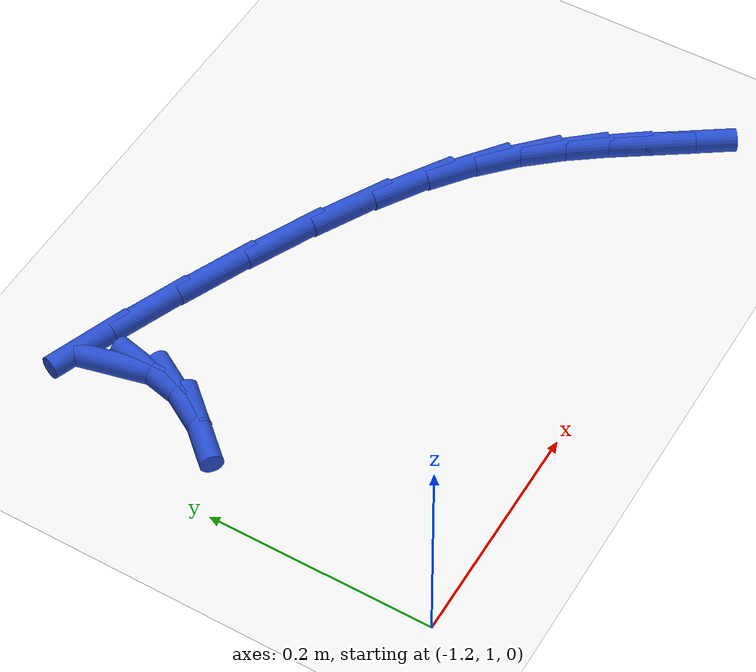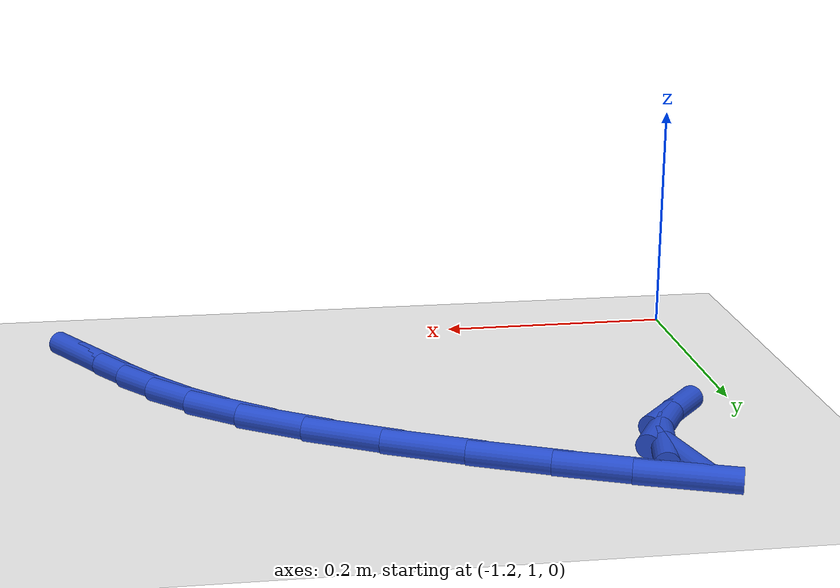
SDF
<sdf version="1.6">
 <world name="default">
  <model name="ground_plane">
   <static>1</static>
   <link name="link">
    <collision name="collision">
     <geometry><plane><normal>0 0 1</normal><size>100 100</size></plane></geometry>
     <surface><friction><ode><mu>100</mu><mu2>50</mu2></ode></friction></surface>
    </collision>
    <visual name="visual">
     <cast_shadows>0</cast_shadows>
     <geometry><plane><normal>0 0 1</normal><size>100 100</size></plane></geometry>
     <material>
      <script><uri>file://media/materials/scripts/gazebo.material</uri><name>Gazebo/WhiteGlow</name></script>
     </material>
    </visual>
   </link>
  </model>
  <model name="line">
   <link name="link_31">
    <pose>-0.6655586864197363 1.0494621732485867 0.01 0 1.57 -0.9759534143175839</pose>
    <collision name="collision">
     <geometry><cylinder><radius>0.01</radius><length>0.08</length></cylinder></geometry>
    </collision>
    <visual name="visual">
     <material>
      <script><name>Gazebo/Blue</name><uri>file://media/materials/scripts/gazebo.material</uri></script>
     </material>
     <geometry><cylinder><radius>0.01</radius><length>0.08</length></cylinder></geometry>
    </visual>
   </link>
   <link name="link_32">
    <pose>-0.6857666283754984 1.079329399103206 0.01 0 1.57 -0.9794229629001187</pose>
    <collision name="collision">
     <geometry><cylinder><radius>0.01</radius><length>0.08</length></cylinder></geometry>
    </collision>
    <visual name="visual">
     <material>
      <script><name>Gazebo/Blue</name><uri>file://media/materials/scripts/gazebo.material</uri></script>
     </material>
     <geometry><cylinder><radius>0.01</radius><length>0.08</length></cylinder></geometry>
    </visual>
   </link>
   <link name="link_33">
    <pose>-0.7060082931679487 1.1094712641499915 0.01 0 1.57 -0.9382048390278432</pose>
    <collision name="collision">
     <geometry><cylinder><radius>0.01</radius><length>0.08</length></cylinder></geometry>
    </collision>
    <visual name="visual">
     <material>
      <script><name>Gazebo/Blue</name><uri>file://media/materials/scripts/gazebo.material</uri></script>
     </material>
     <geometry><cylinder><radius>0.01</radius><length>0.08</length></cylinder></geometry>
    </visual>
   </link>
   <link name="link_34">
    <pose>-0.728303916838107 1.139884421072512 0.01 0 1.57 -0.8608238318364018</pose>
    <collision name="collision">
     <geometry><cylinder><radius>0.01</radius><length>0.08</length></cylinder></geometry>
    </collision>
    <visual name="visual">
     <material>
      <script><name>Gazebo/Blue</name><uri>file://media/materials/scripts/gazebo.material</uri></script>
     </material>
     <geometry><cylinder><radius>0.01</radius><length>0.08</length></cylinder></geometry>
    </visual>
   </link>
   <link name="link_35">
    <pose>-0.7546737357314608 1.1705655225461382 0.01 0 1.57 -0.7614545776031008</pose>
    <collision name="collision">
     <geometry><cylinder><radius>0.01</radius><length>0.08</length></cylinder></geometry>
    </collision>
    <visual name="visual">
     <material>
      <script><name>Gazebo/Blue</name><uri>file://media/materials/scripts/gazebo.material</uri></script>
     </material>
     <geometry><cylinder><radius>0.01</radius><length>0.08</length></cylinder></geometry>
    </visual>
   </link>
   <link name="link_36">
    <pose>-0.787137986193498 1.2015112212462418 0.01 0 1.57 -0.6555778886582705</pose>
    <collision name="collision">
     <geometry><cylinder><radius>0.01</radius><length>0.08</length></cylinder></geometry>
    </collision>
    <visual name="visual">
     <material>
      <script><name>Gazebo/Blue</name><uri>file://media/materials/scripts/gazebo.material</uri></script>
     </material>
     <geometry><cylinder><radius>0.01</radius><length>0.08</length></cylinder></geometry>
    </visual>
   </link>
   <link name="link_37">
    <pose>-0.8277169045697061 1.2327181698481937 0.01 0 1.57 -0.5586795351515282</pose>
    <collision name="collision">
     <geometry><cylinder><radius>0.01</radius><length>0.08</length></cylinder></geometry>
    </collision>
    <visual name="visual">
     <material>
      <script><name>Gazebo/Blue</name><uri>file://media/materials/scripts/gazebo.material</uri></script>
     </material>
     <geometry><cylinder><radius>0.01</radius><length>0.08</length></cylinder></geometry>
    </visual>
   </link>
   <link name="link_38">
    <pose>-0.877895201160869 1.2640852031718677 0.01 0 1.57 -0.49127846712354617</pose>
    <collision name="collision">
     <geometry><cylinder><radius>0.01</radius><length>0.08</length></cylinder></geometry>
    </collision>
    <visual name="visual">
     <material>
      <script><name>Gazebo/Blue</name><uri>file://media/materials/scripts/gazebo.material</uri></script>
     </material>
     <geometry><cylinder><radius>0.01</radius><length>0.08</length></cylinder></geometry>
    </visual>
   </link>
   <link name="link_39">
    <pose>-0.9353225960276756 1.2948106662573213 0.01 0 1.57 -0.4456797730149744</pose>
    <collision name="collision">
     <geometry><cylinder><radius>0.01</radius><length>0.08</length></cylinder></geometry>
    </collision>
    <visual name="visual">
     <material>
      <script><name>Gazebo/Blue</name><uri>file://media/materials/scripts/gazebo.material</uri></script>
     </material>
     <geometry><cylinder><radius>0.01</radius><length>0.08</length></cylinder></geometry>
    </visual>
   </link>
   <link name="link_40">
    <pose>-0.9959768888260876 1.3237875153214698 0.01 0 1.57 -0.4114936196845546</pose>
    <collision name="collision">
     <geometry><cylinder><radius>0.01</radius><length>0.08</length></cylinder></geometry>
    </collision>
    <visual name="visual">
     <material>
      <script><name>Gazebo/Blue</name><uri>file://media/materials/scripts/gazebo.material</uri></script>
     </material>
     <geometry><cylinder><radius>0.01</radius><length>0.08</length></cylinder></geometry>
    </visual>
   </link>
   <link name="link_41">
    <pose>-1.0558289479342888 1.349907440531269 0.01 0 1.57 -0.3827982972189128</pose>
    <collision name="collision">
     <geometry><cylinder><radius>0.01</radius><length>0.08</length></cylinder></geometry>
    </collision>
    <visual name="visual">
     <material>
      <script><name>Gazebo/Blue</name><uri>file://media/materials/scripts/gazebo.material</uri></script>
     </material>
     <geometry><cylinder><radius>0.01</radius><length>0.08</length></cylinder></geometry>
    </visual>
   </link>
   <link name="link_42">
    <pose>-1.1108496417304634 1.3720621320536743 0.01 0 1.57 -0.3544156499729854</pose>
    <collision name="collision">
     <geometry><cylinder><radius>0.01</radius><length>0.08</length></cylinder></geometry>
    </collision>
    <visual name="visual">
     <material>
      <script><name>Gazebo/Blue</name><uri>file://media/materials/scripts/gazebo.material</uri></script>
     </material>
     <geometry><cylinder><radius>0.01</radius><length>0.08</length></cylinder></geometry>
    </visual>
   </link>
   <link name="link_49">
    <pose>-1.11713002952144 1.3387703517172391 0.01 0 1.57 -1.345762738271965</pose>
    <collision name="collision">
     <geometry><cylinder><radius>0.01</radius><length>0.08</length></cylinder></geometry>
    </collision>
    <visual name="visual">
     <material>
      <script><name>Gazebo/Blue</name><uri>file://media/materials/scripts/gazebo.material</uri></script>
     </material>
     <geometry><cylinder><radius>0.01</radius><length>0.08</length></cylinder></geometry>
    </visual>
   </link>
   <link name="link_50">
    <pose>-1.1108504371868106 1.3113378558702198 0.01 0 1.57 1.347301790602479</pose>
    <collision name="collision">
     <geometry><cylinder><radius>0.01</radius><length>0.08</length></cylinder></geometry>
    </collision>
    <visual name="visual">
     <material>
      <script><name>Gazebo/Blue</name><uri>file://media/materials/scripts/gazebo.material</uri></script>
     </material>
     <geometry><cylinder><radius>0.01</radius><length>0.08</length></cylinder></geometry>
    </visual>
   </link>
   <link name="link_51">
    <pose>-1.1175602126354645 1.2818172938286727 0.01 0 1.57 1.0385991122041263</pose>
    <collision name="collision">
     <geometry><cylinder><radius>0.01</radius><length>0.08</length></cylinder></geometry>
    </collision>
    <visual name="visual">
     <material>
      <script><name>Gazebo/Blue</name><uri>file://media/materials/scripts/gazebo.material</uri></script>
     </material>
     <geometry><cylinder><radius>0.01</radius><length>0.08</length></cylinder></geometry>
    </visual>
   </link>
   <link name="link_52">
    <pose>-1.1358025844716493 1.2508388105965973 0.01 0 1.57 0.8433472496219077</pose>
    <collision name="collision">
     <geometry><cylinder><radius>0.01</radius><length>0.08</length></cylinder></geometry>
    </collision>
    <visual name="visual">
     <material>
      <script><name>Gazebo/Blue</name><uri>file://media/materials/scripts/gazebo.material</uri></script>
     </material>
     <geometry><cylinder><radius>0.01</radius><length>0.08</length></cylinder></geometry>
    </visual>
   </link>
  </model>
 </world>
</sdf>
